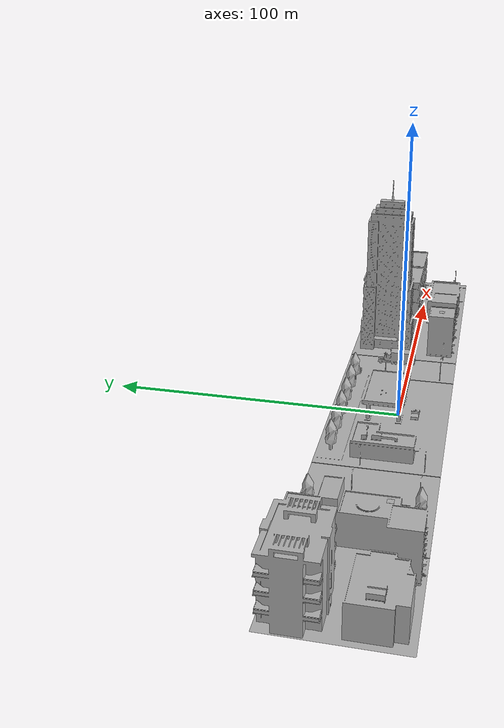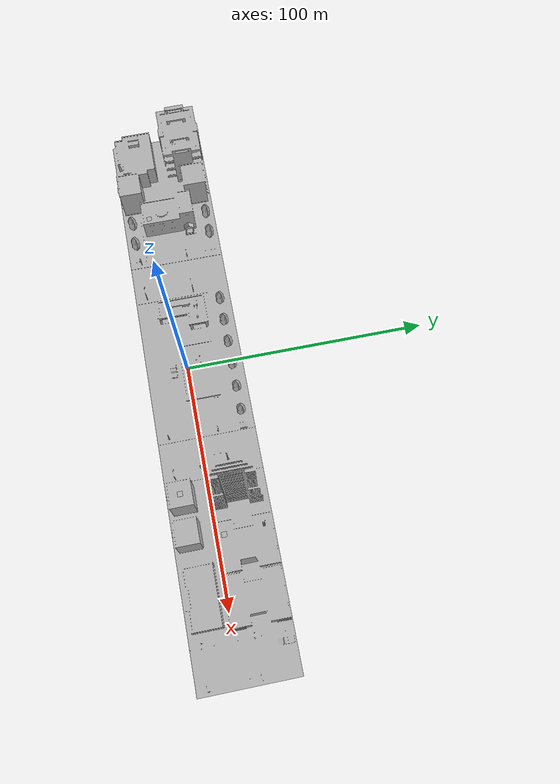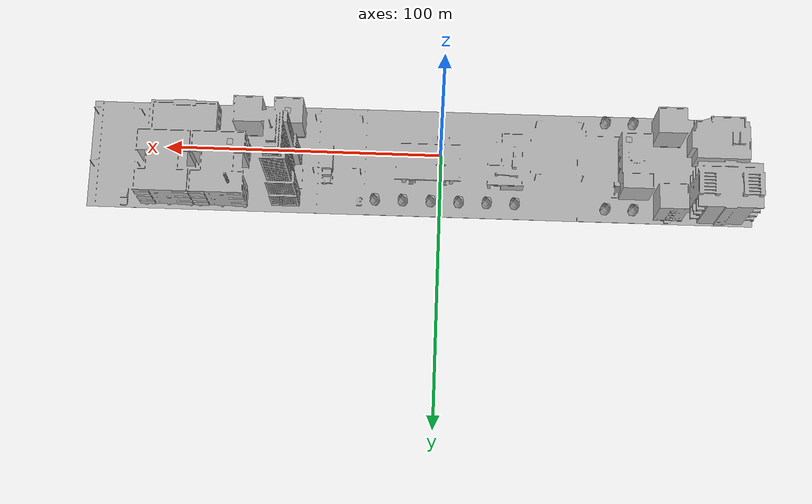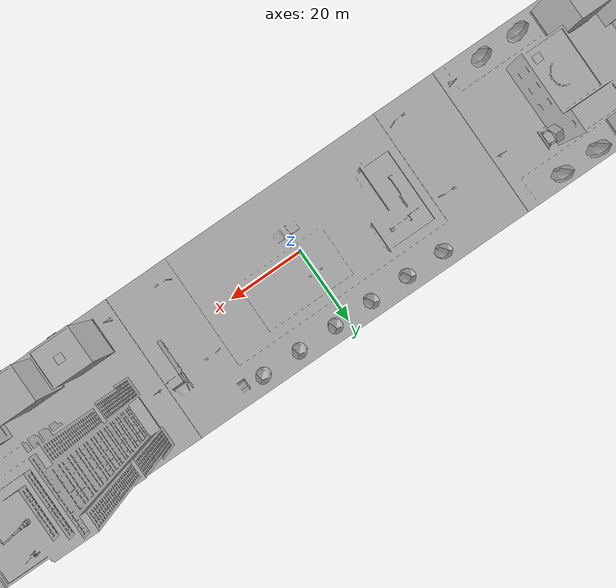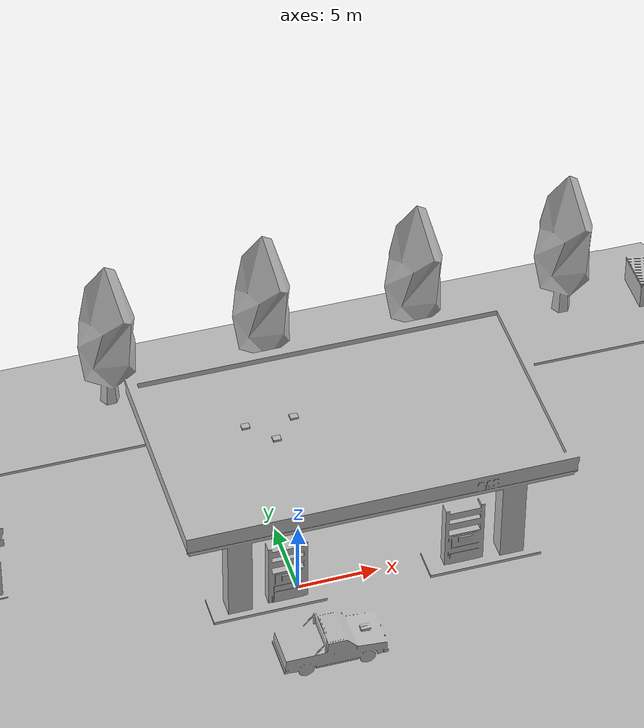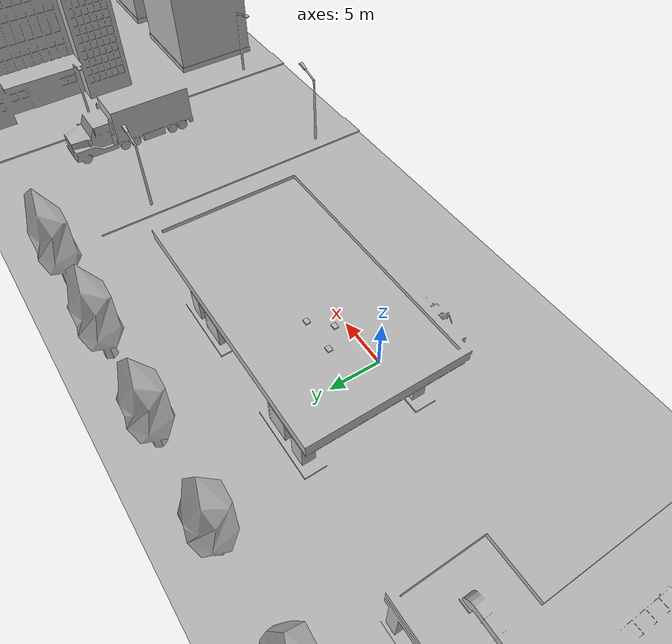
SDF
<sdf version="1.6">
 <world name="default">
  <scene>
   <shadows>false</shadows>
   <audio>false</audio>
   <grid>false</grid>
   <origin_visual>false</origin_visual>
   <sky><clouds><speed>4</speed></clouds></sky>
  </scene>
  <light type="directional" name="sun">
   <pose>0 0 100 0 0 0</pose>
   <diffuse>0.8 0.8 0.8 1</diffuse>
   <specular>0.2 0.2 0.2 1</specular>
   <attenuation>
    <range>2000</range>
    <constant>0.9</constant>
    <linear>0.01</linear>
    <quadratic>0.001</quadratic>
   </attenuation>
   <direction>-0.5 0.1 -0.9</direction>
  </light>
  <include><uri>model://sector</uri><static>true</static></include>
  <include><uri>model://landing_station</uri><name>"LS_1"</name><pose>-67 -5 10.654960 0 0 0</pose></include>
  <include><uri>model://landing_station</uri><name>"LS_2"</name><pose>55 -10 16.296082 0 0 0</pose></include>
  <include><uri>model://landing_station</uri><name>"LS_3"</name><pose>74 4 21.785538 0 0 0</pose></include>
  <include><uri>model://parcel_box</uri><name>parcel_box_0</name><pose>0 4.5 8.134603 0 0 0</pose></include>
  <include><uri>model://parcel_box</uri><name>parcel_box_1</name><pose>-1.5 6 8.134603 0 0 0</pose></include>
  <include><uri>model://parcel_box</uri><name>parcel_box_2</name><pose>1.5 6 8.134603 0 0 0</pose></include>
  <plugin name="ros_link_attacher_plugin" filename="libgazebo_ros_link_attacher.so"/>
 </world>
</sdf>

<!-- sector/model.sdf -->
<sdf version="1.4">
    <model name="sector">
    	<static>true</static>
      <link name="sector">
        <visual name="visual">
          <geometry>
            <mesh><uri>model://sector/meshes/sector.obj</uri></mesh>
          </geometry>
        </visual>
        <collision name="collision">
          <geometry>
            <mesh><uri>model://sector/meshes/sector.obj</uri></mesh>
          </geometry>
        </collision>
      </link>
    </model>
</sdf>

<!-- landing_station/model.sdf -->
<sdf version="1.4">
    <model name="landing_station">
      <pose>0 0 0  0 0 0</pose>
      <static>true</static>
      <link name="body">
        <visual name="visual">
          <geometry>
            <mesh><uri>model://landing_station/meshes/marker.obj</uri></mesh>
          </geometry>
        </visual>
      </link>
    </model>
</sdf>

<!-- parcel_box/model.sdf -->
<sdf version="1.4">
  <model name="parcel_box">
    <pose>0 0 0.135 0 0 0</pose>
    <link name="link">
      <inertial>
        <mass>0.00001</mass>
        <inertia>
          <ixx>0.00000001940</ixx>
          <ixy>0</ixy>
          <ixz>0</ixz>
          <iyy>0.00000002690833</iyy>
          <iyz>0</iyz>
          <izz>0.000000034166</izz>
        </inertia>
      </inertial>
      <collision name="collision">
        <geometry>
          <box>
            <size>0.5 0.4 0.26</size>
          </box>
        </geometry>
      </collision>
      <visual name="visual">
        <pose>0 0 -0.135 0 0 0</pose>
        <geometry>
          <mesh>
            <uri>model://parcel_box/meshes/parcel_box.obj</uri>
          </mesh>
        </geometry>
      </visual>
    </link>
  </model>
</sdf>
